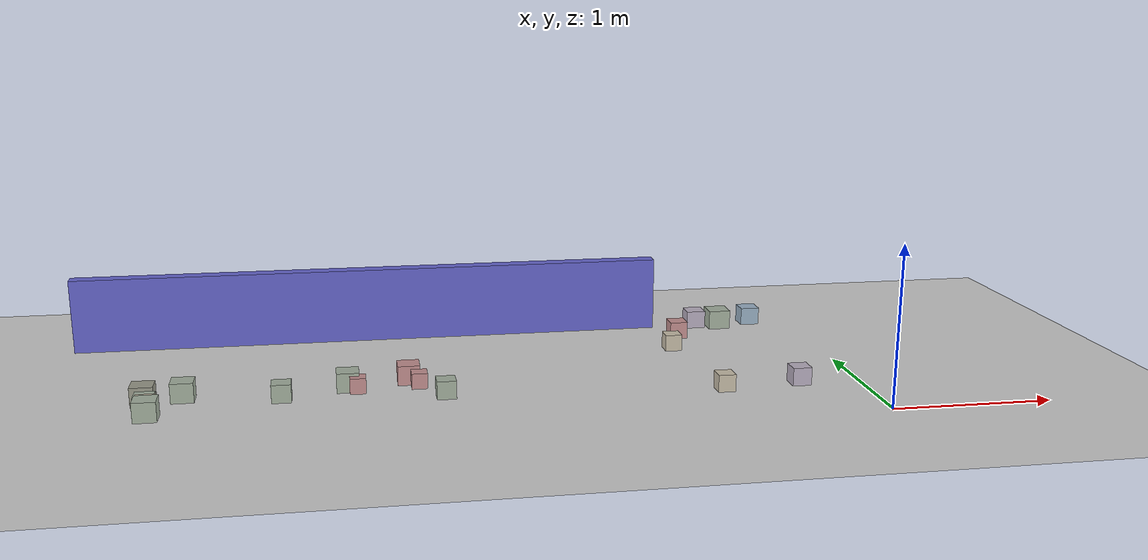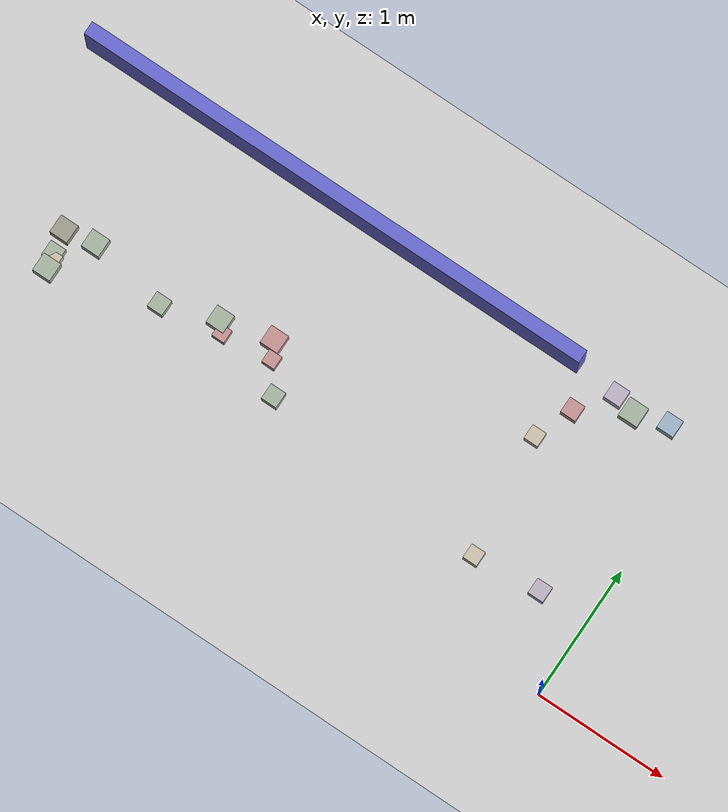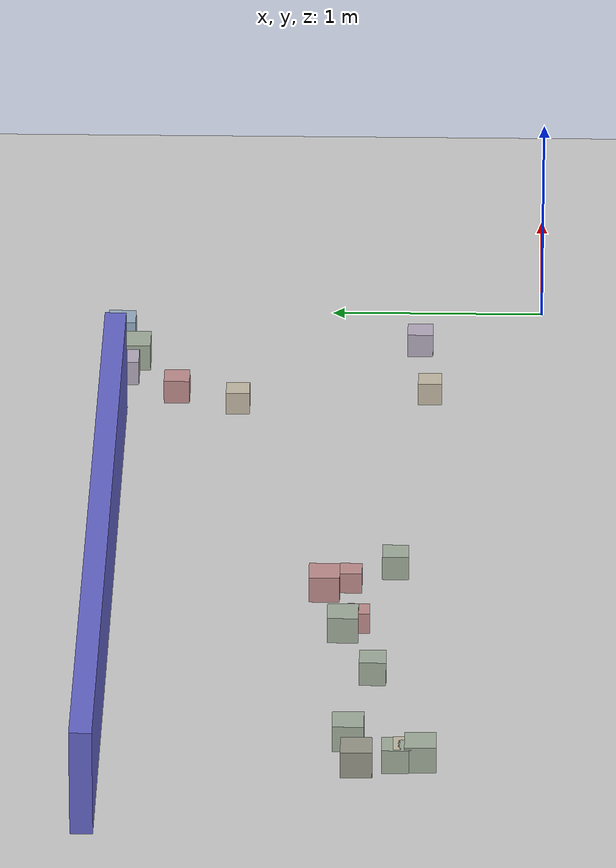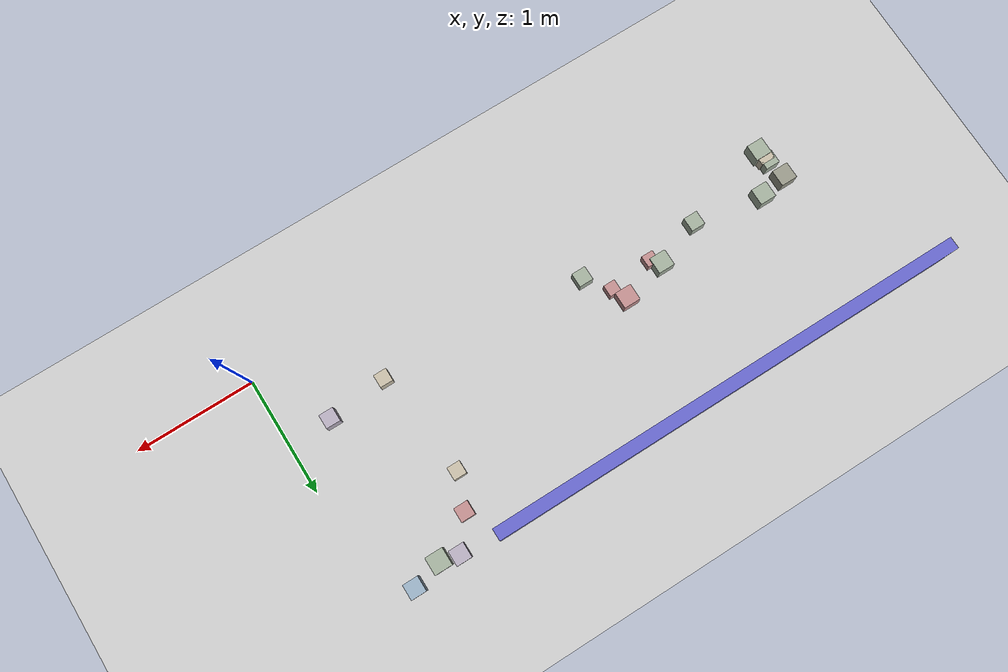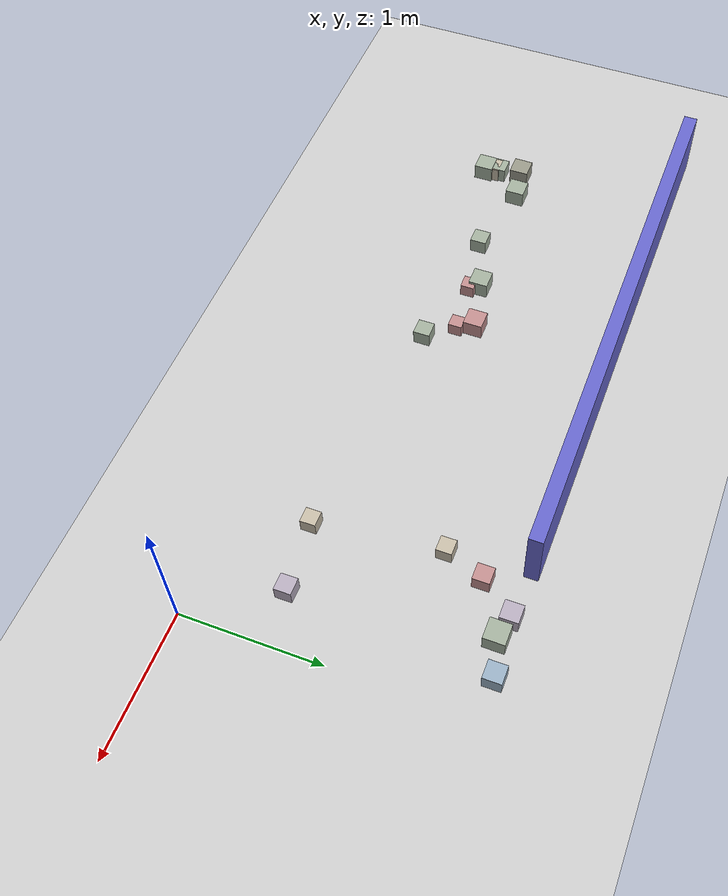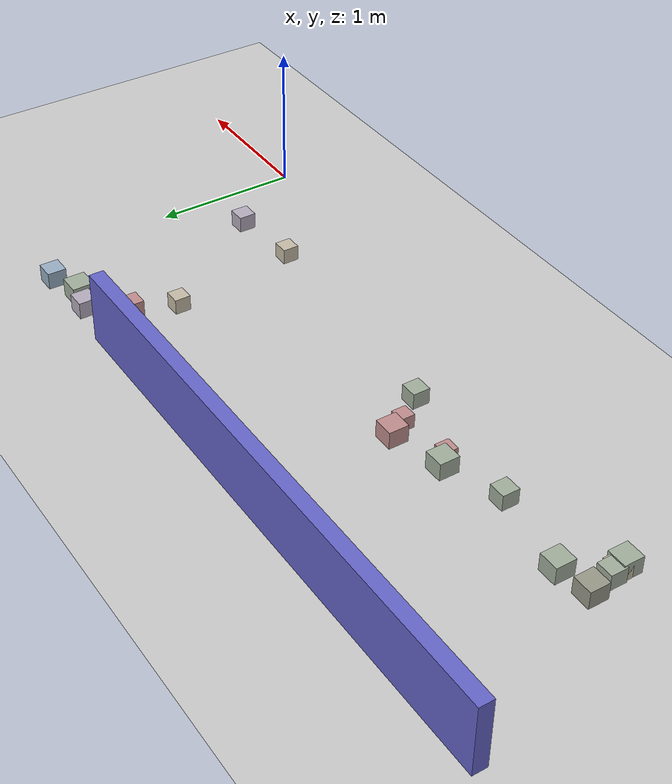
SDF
<sdf version="1.6">
 <world name="small_maze_world">
  <include><uri>model://ground_plane</uri></include>
  <include><uri>model://sun</uri></include>
  <model name="maze_wall_1">
   <static>true</static>
   <pose>-3 2 0.25 0 0 0</pose>
   <link name="link">
    <collision name="collision"><geometry><box><size>4 0.1 0.5</size></box></geometry></collision>
    <visual name="visual">
     <geometry><box><size>4 0.1 0.5</size></box></geometry>
     <material><ambient>0.4 0.4 0.8 1</ambient></material>
    </visual>
   </link>
  </model>
  <model name="box_17">
   <static>false</static>
   <pose>-0.28 2.0 0.05 0 0 0</pose>
   <link name="link">
    <inertial>
     <mass>0.2</mass>
     <inertia><ixx>0.001</ixx><iyy>0.001</iyy><izz>0.001</izz><ixy>0</ixy><ixz>0</ixz><iyz>0</iyz></inertia>
    </inertial>
    <collision name="collision"><geometry><box><size>0.13 0.13 0.13</size></box></geometry></collision>
    <visual name="visual">
     <geometry><box><size>0.13 0.13 0.13</size></box></geometry>
     <material><ambient>0.6 0.69 0.77 1</ambient><diffuse>0.6 0.69 0.77 1</diffuse></material>
    </visual>
   </link>
  </model>
  <model name="box_63">
   <static>false</static>
   <pose>-0.88 0.53 0.05 0 0 0</pose>
   <link name="link">
    <inertial>
     <mass>0.2</mass>
     <inertia><ixx>0.001</ixx><iyy>0.001</iyy><izz>0.001</izz><ixy>0</ixy><ixz>0</ixz><iyz>0</iyz></inertia>
    </inertial>
    <collision name="collision"><geometry><box><size>0.11 0.11 0.11</size></box></geometry></collision>
    <visual name="visual">
     <geometry><box><size>0.11 0.11 0.11</size></box></geometry>
     <material><ambient>0.78 0.74 0.66 1</ambient><diffuse>0.78 0.74 0.66 1</diffuse></material>
    </visual>
   </link>
  </model>
  <model name="box_76">
   <static>false</static>
   <pose>-2.81 0.99 0.05 0 0 0</pose>
   <link name="link">
    <inertial>
     <mass>0.2</mass>
     <inertia><ixx>0.001</ixx><iyy>0.001</iyy><izz>0.001</izz><ixy>0</ixy><ixz>0</ixz><iyz>0</iyz></inertia>
    </inertial>
    <collision name="collision"><geometry><box><size>0.14 0.14 0.14</size></box></geometry></collision>
    <visual name="visual">
     <geometry><box><size>0.14 0.14 0.14</size></box></geometry>
     <material><ambient>0.76 0.56 0.56 1</ambient><diffuse>0.76 0.56 0.56 1</diffuse></material>
    </visual>
   </link>
  </model>
  <model name="box_101">
   <static>false</static>
   <pose>-2.75 0.87 0.05 0 0 0</pose>
   <link name="link">
    <inertial>
     <mass>0.2</mass>
     <inertia><ixx>0.001</ixx><iyy>0.001</iyy><izz>0.001</izz><ixy>0</ixy><ixz>0</ixz><iyz>0</iyz></inertia>
    </inertial>
    <collision name="collision"><geometry><box><size>0.1 0.1 0.1</size></box></geometry></collision>
    <visual name="visual">
     <geometry><box><size>0.1 0.1 0.1</size></box></geometry>
     <material><ambient>0.76 0.56 0.56 1</ambient><diffuse>0.76 0.56 0.56 1</diffuse></material>
    </visual>
   </link>
  </model>
  <model name="box_102">
   <static>false</static>
   <pose>-3.13 0.83 0.05 0 0 0</pose>
   <link name="link">
    <inertial>
     <mass>0.2</mass>
     <inertia><ixx>0.001</ixx><iyy>0.001</iyy><izz>0.001</izz><ixy>0</ixy><ixz>0</ixz><iyz>0</iyz></inertia>
    </inertial>
    <collision name="collision"><geometry><box><size>0.1 0.1 0.1</size></box></geometry></collision>
    <visual name="visual">
     <geometry><box><size>0.1 0.1 0.1</size></box></geometry>
     <material><ambient>0.76 0.56 0.56 1</ambient><diffuse>0.76 0.56 0.56 1</diffuse></material>
    </visual>
   </link>
  </model>
  <model name="box_139">
   <static>false</static>
   <pose>-4.37 0.6 0.05 0 0 0</pose>
   <link name="link">
    <inertial>
     <mass>0.2</mass>
     <inertia><ixx>0.001</ixx><iyy>0.001</iyy><izz>0.001</izz><ixy>0</ixy><ixz>0</ixz><iyz>0</iyz></inertia>
    </inertial>
    <collision name="collision"><geometry><box><size>0.12 0.12 0.12</size></box></geometry></collision>
    <visual name="visual">
     <geometry><box><size>0.12 0.12 0.12</size></box></geometry>
     <material><ambient>0.78 0.74 0.66 1</ambient><diffuse>0.78 0.74 0.66 1</diffuse></material>
    </visual>
   </link>
  </model>
  <model name="box_162">
   <static>false</static>
   <pose>-0.53 1.93 0.05 0 0 0</pose>
   <link name="link">
    <inertial>
     <mass>0.2</mass>
     <inertia><ixx>0.001</ixx><iyy>0.001</iyy><izz>0.001</izz><ixy>0</ixy><ixz>0</ixz><iyz>0</iyz></inertia>
    </inertial>
    <collision name="collision"><geometry><box><size>0.15 0.15 0.15</size></box></geometry></collision>
    <visual name="visual">
     <geometry><box><size>0.15 0.15 0.15</size></box></geometry>
     <material><ambient>0.64 0.69 0.62 1</ambient><diffuse>0.64 0.69 0.62 1</diffuse></material>
    </visual>
   </link>
  </model>
  <model name="box_174">
   <static>false</static>
   <pose>-3.59 0.76 0.05 0 0 0</pose>
   <link name="link">
    <inertial>
     <mass>0.2</mass>
     <inertia><ixx>0.001</ixx><iyy>0.001</iyy><izz>0.001</izz><ixy>0</ixy><ixz>0</ixz><iyz>0</iyz></inertia>
    </inertial>
    <collision name="collision"><geometry><box><size>0.12 0.12 0.12</size></box></geometry></collision>
    <visual name="visual">
     <geometry><box><size>0.12 0.12 0.12</size></box></geometry>
     <material><ambient>0.64 0.69 0.62 1</ambient><diffuse>0.64 0.69 0.62 1</diffuse></material>
    </visual>
   </link>
  </model>
  <model name="box_176">
   <static>false</static>
   <pose>-4.38 0.65 0.05 0 0 0</pose>
   <link name="link">
    <inertial>
     <mass>0.2</mass>
     <inertia><ixx>0.001</ixx><iyy>0.001</iyy><izz>0.001</izz><ixy>0</ixy><ixz>0</ixz><iyz>0</iyz></inertia>
    </inertial>
    <collision name="collision"><geometry><box><size>0.12 0.12 0.12</size></box></geometry></collision>
    <visual name="visual">
     <geometry><box><size>0.12 0.12 0.12</size></box></geometry>
     <material><ambient>0.64 0.69 0.62 1</ambient><diffuse>0.64 0.69 0.62 1</diffuse></material>
    </visual>
   </link>
  </model>
  <model name="box_195">
   <static>false</static>
   <pose>-4.41 0.82 0.05 0 0 0</pose>
   <link name="link">
    <inertial>
     <mass>0.2</mass>
     <inertia><ixx>0.001</ixx><iyy>0.001</iyy><izz>0.001</izz><ixy>0</ixy><ixz>0</ixz><iyz>0</iyz></inertia>
    </inertial>
    <collision name="collision"><geometry><box><size>0.14 0.14 0.14</size></box></geometry></collision>
    <visual name="visual">
     <geometry><box><size>0.14 0.14 0.14</size></box></geometry>
     <material><ambient>0.6 0.6 0.54 1</ambient><diffuse>0.6 0.6 0.54 1</diffuse></material>
    </visual>
   </link>
  </model>
  <model name="box_225">
   <static>false</static>
   <pose>-0.88 1.72 0.05 0 0 0</pose>
   <link name="link">
    <inertial>
     <mass>0.2</mass>
     <inertia><ixx>0.001</ixx><iyy>0.001</iyy><izz>0.001</izz><ixy>0</ixy><ixz>0</ixz><iyz>0</iyz></inertia>
    </inertial>
    <collision name="collision"><geometry><box><size>0.12 0.12 0.12</size></box></geometry></collision>
    <visual name="visual">
     <geometry><box><size>0.12 0.12 0.12</size></box></geometry>
     <material><ambient>0.76 0.56 0.56 1</ambient><diffuse>0.76 0.56 0.56 1</diffuse></material>
    </visual>
   </link>
  </model>
  <model name="box_251">
   <static>false</static>
   <pose>-4.18 0.86 0.05 0 0 0</pose>
   <link name="link">
    <inertial>
     <mass>0.2</mass>
     <inertia><ixx>0.001</ixx><iyy>0.001</iyy><izz>0.001</izz><ixy>0</ixy><ixz>0</ixz><iyz>0</iyz></inertia>
    </inertial>
    <collision name="collision"><geometry><box><size>0.14 0.14 0.14</size></box></geometry></collision>
    <visual name="visual">
     <geometry><box><size>0.14 0.14 0.14</size></box></geometry>
     <material><ambient>0.64 0.69 0.62 1</ambient><diffuse>0.64 0.69 0.62 1</diffuse></material>
    </visual>
   </link>
  </model>
  <model name="box_283">
   <static>false</static>
   <pose>-0.38 0.58 0.05 0 0 0</pose>
   <link name="link">
    <inertial>
     <mass>0.2</mass>
     <inertia><ixx>0.001</ixx><iyy>0.001</iyy><izz>0.001</izz><ixy>0</ixy><ixz>0</ixz><iyz>0</iyz></inertia>
    </inertial>
    <collision name="collision"><geometry><box><size>0.12 0.12 0.12</size></box></geometry></collision>
    <visual name="visual">
     <geometry><box><size>0.12 0.12 0.12</size></box></geometry>
     <material><ambient>0.72 0.68 0.75 1</ambient><diffuse>0.72 0.68 0.75 1</diffuse></material>
    </visual>
   </link>
  </model>
  <model name="box_375">
   <static>false</static>
   <pose>-0.99 1.43 0.05 0 0 0</pose>
   <link name="link">
    <inertial>
     <mass>0.2</mass>
     <inertia><ixx>0.001</ixx><iyy>0.001</iyy><izz>0.001</izz><ixy>0</ixy><ixz>0</ixz><iyz>0</iyz></inertia>
    </inertial>
    <collision name="collision"><geometry><box><size>0.11 0.11 0.11</size></box></geometry></collision>
    <visual name="visual">
     <geometry><box><size>0.11 0.11 0.11</size></box></geometry>
     <material><ambient>0.78 0.74 0.66 1</ambient><diffuse>0.78 0.74 0.66 1</diffuse></material>
    </visual>
   </link>
  </model>
  <model name="box_405">
   <static>false</static>
   <pose>-2.6 0.67 0.05 0 0 0</pose>
   <link name="link">
    <inertial>
     <mass>0.2</mass>
     <inertia><ixx>0.001</ixx><iyy>0.001</iyy><izz>0.001</izz><ixy>0</ixy><ixz>0</ixz><iyz>0</iyz></inertia>
    </inertial>
    <collision name="collision"><geometry><box><size>0.12 0.12 0.12</size></box></geometry></collision>
    <visual name="visual">
     <geometry><box><size>0.12 0.12 0.12</size></box></geometry>
     <material><ambient>0.64 0.69 0.62 1</ambient><diffuse>0.64 0.69 0.62 1</diffuse></material>
    </visual>
   </link>
  </model>
  <model name="box_411">
   <static>false</static>
   <pose>-4.36 0.54 0.05 0 0 0</pose>
   <link name="link">
    <inertial>
     <mass>0.2</mass>
     <inertia><ixx>0.001</ixx><iyy>0.001</iyy><izz>0.001</izz><ixy>0</ixy><ixz>0</ixz><iyz>0</iyz></inertia>
    </inertial>
    <collision name="collision"><geometry><box><size>0.14 0.14 0.14</size></box></geometry></collision>
    <visual name="visual">
     <geometry><box><size>0.14 0.14 0.14</size></box></geometry>
     <material><ambient>0.64 0.69 0.62 1</ambient><diffuse>0.64 0.69 0.62 1</diffuse></material>
    </visual>
   </link>
  </model>
  <model name="box_424">
   <static>false</static>
   <pose>-3.19 0.9 0.05 0 0 0</pose>
   <link name="link">
    <inertial>
     <mass>0.2</mass>
     <inertia><ixx>0.001</ixx><iyy>0.001</iyy><izz>0.001</izz><ixy>0</ixy><ixz>0</ixz><iyz>0</iyz></inertia>
    </inertial>
    <collision name="collision"><geometry><box><size>0.14 0.14 0.14</size></box></geometry></collision>
    <visual name="visual">
     <geometry><box><size>0.14 0.14 0.14</size></box></geometry>
     <material><ambient>0.64 0.69 0.62 1</ambient><diffuse>0.64 0.69 0.62 1</diffuse></material>
    </visual>
   </link>
  </model>
  <model name="box_450">
   <static>false</static>
   <pose>-0.69 1.97 0.05 0 0 0</pose>
   <link name="link">
    <inertial>
     <mass>0.2</mass>
     <inertia><ixx>0.001</ixx><iyy>0.001</iyy><izz>0.001</izz><ixy>0</ixy><ixz>0</ixz><iyz>0</iyz></inertia>
    </inertial>
    <collision name="collision"><geometry><box><size>0.13 0.13 0.13</size></box></geometry></collision>
    <visual name="visual">
     <geometry><box><size>0.13 0.13 0.13</size></box></geometry>
     <material><ambient>0.72 0.68 0.75 1</ambient><diffuse>0.72 0.68 0.75 1</diffuse></material>
    </visual>
   </link>
  </model>
 </world>
</sdf>
